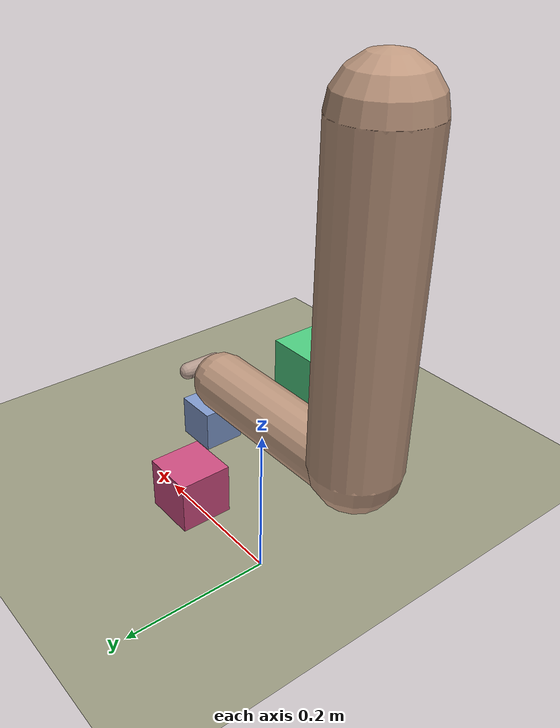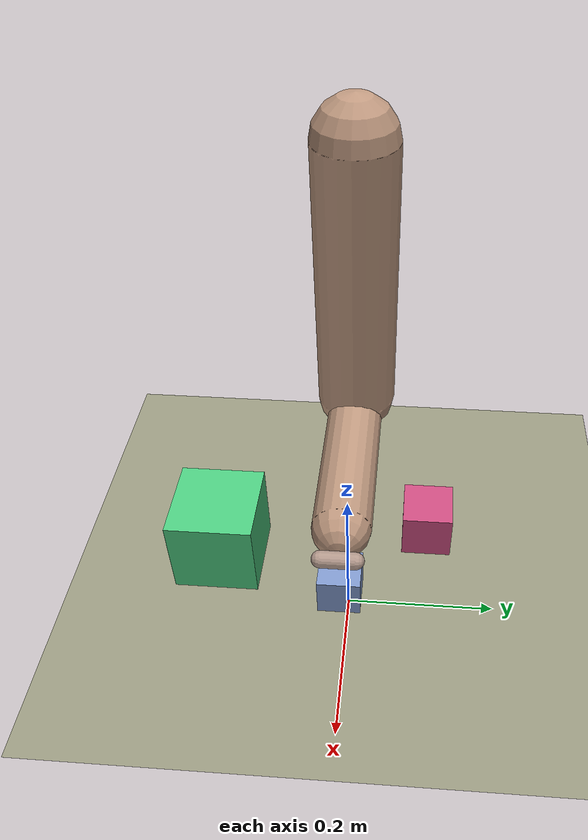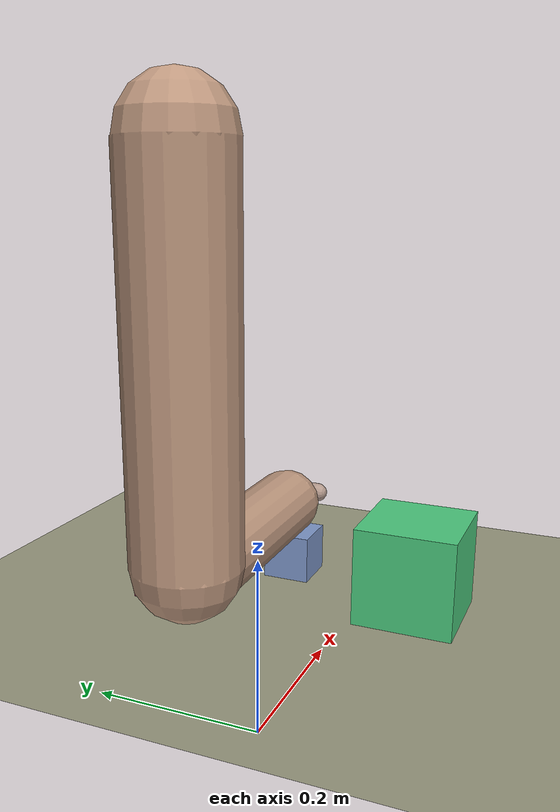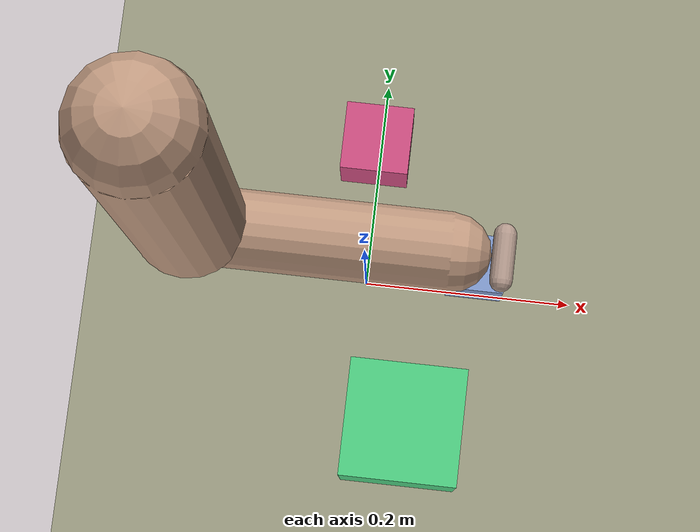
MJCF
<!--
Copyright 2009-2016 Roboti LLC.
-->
<mujoco model="arm_claw (v1.31)">
	<compiler 	inertiafromgeom="auto"
				angle="radian"/>

	<size 	nuser_jnt="1"
			nuser_geom="1"/>

	<option	timestep="0.001"
			gravity="0 0 -9.8"
			viscosity="0"
			iterations="20"/>

	<asset>
		<material name="MatGnd" specular=".3" shininess=".3" reflectance="0.3" rgba=".5 .55 .5 1"/>
	</asset>

	<default>
		<joint limited="true" damping="1" stiffness="0" armature=".1" user="0"/>
		<geom solref="0.008 1" solimp="0.95 0.95 0.01" margin="0.001" user="0"/>
		<motor ctrllimited="true" ctrlrange="-1 1"/>
		<position ctrllimited="true"/>

		<default class='0'>
			<geom friction="1 0.005 0.001" rgba=".75 .6 .5 1" contype="1" conaffinity="0"/>
		</default>

		<default class='1'>
			<geom friction="1 0.005 0.001" rgba=".7 .6 .55 1" contype="1" conaffinity="0"/>
		</default>

		<default class='arm'>
			<joint damping="5"/>
		</default>
	</default>

	<worldbody>
		<light directional="true" cutoff="40" exponent="10" diffuse=".4 .4 .4" specular=".7 .7 .7" pos="0 0 1.5" dir="0 0 -1"/>
		<geom name="tableTop" material="MatGnd" type="plane" pos="0.15 0 0.15" size="0.4 0.6 0.5" rgba=".6 .6 .5 1" contype="1" conaffinity="1"/>

		<!--  ================= ARM ================= /-->
		<body name="upperarm" pos="-0.15 0 0.6">
			<geom class="0" type="capsule" fromto="0 0 0 0 0 -0.345" size="0.05"/>
			<joint class='arm' name="s_abduction" type="hinge" pos="0 0 0" limited='false' axis="1 0 0" range="-1.57 .7" user="001"/>
			<joint class='arm' name="s_flexion" type="hinge" pos="0 0 0" limited='false' axis="0 -1 0" range="-.85 1.57" user="002"/>
			<joint class='arm' name="s_rotation" type="hinge" pos="0 0 0" limited='false' axis="0 0 1" range="-.85 .85" user="003"/>

			<body name="forearm" pos="0 0 -0.36">
				<geom class="0" type="capsule" fromto="0 0 0 0.225 0 0" size="0.035"/>
				<joint class='arm' name="e_flexion" type="hinge" pos="0 0 0" limited='false' axis="0 -1 0" range="-1.5 1.05" user="004"/>
				<joint class='arm' name="e_pronation" type="hinge" pos="0 0 0" limited='false' axis="-1 0 0" range="-1.5 1.57" user="005"/>

				<!--  ================= Palm ================= /-->

				<body name="claw" pos="0.27 0 0" quat="0 1 0 0">
					<geom class="1" name="Geomclaw" type="capsule" fromto="0 .02 0 0 -.02 0" size="0.01" />
					<joint name="w_abduction" type="hinge" pos="0 0 0" limited='false' axis="0 0 1" range="-.5 .5" user="006"/>
					<joint name="w_flexion" type="hinge" pos="0 0 0" limited='false' axis="0 -1 0" range="-1.05 1.05" user="007"/>
					<site name="end_effector" pos="0 0 0" size="0.01"/>
				</body>

			</body>

		</body>

		<!--  ================= OBJECT ================= /-->
		<body name="a_object" pos="0.2 0.1 0.175">
			<geom density="1e4" type="box" name="a_box" pos="-0.1 -0.1 0" size="0.025 0.025 0.025" rgba="0.5 0.6 0.8 1" user="1" contype="0" conaffinity="1"/>
			<joint name="a_obj" type="free" limited='false' damping="0" armature="0"/>
		</body>
		<body name="b_object" pos="0.1 -0.2 0.2">
			<geom density="1e4" type="box" name="b_box" pos="-0.05 0.05 0" size="0.05 0.05 0.05" rgba="0.3 0.8 0.5 1" user="1" contype="1" conaffinity="1"/>
			<joint name="b_obj" type="free" limited='false' damping="0" armature="0"/>
		</body>
		<body name="c_object" pos="0.05 0.05 0.18">
			<geom density="1e4" type="box" name="c_box" pos="-0.05 0.05 0" size="0.03 0.03 0.03" rgba="0.8 0.3 0.5 1" user="1" contype="1" conaffinity="1"/>
			<joint name="c_obj" type="free" limited='false' damping="0" armature="0"/>
		</body>

	</worldbody>

	<actuator>

		<!--  ================= Torque actuators ================= /-->
		<motor joint='s_abduction' 	name='As_abduction' gear="100"/>
		<motor joint='s_flexion' 	name='As_flexion' 	gear="100"/>
		<motor joint='s_rotation' 	name='As_rotation' 	gear="100"/>
		<motor joint='e_flexion' 	name='Ae_flexion' 	gear="70"/>
		<motor joint='e_pronation' 	name='Ae_pronation' gear="70"/>
		<motor joint='w_abduction' 	name='Aw_abduction' gear="30"/>
		<motor joint='w_flexion' 	name='Aw_flexion' 	gear="30"/>

		<!--  ================= Position actuators ================= /-->

	</actuator>

</mujoco>
